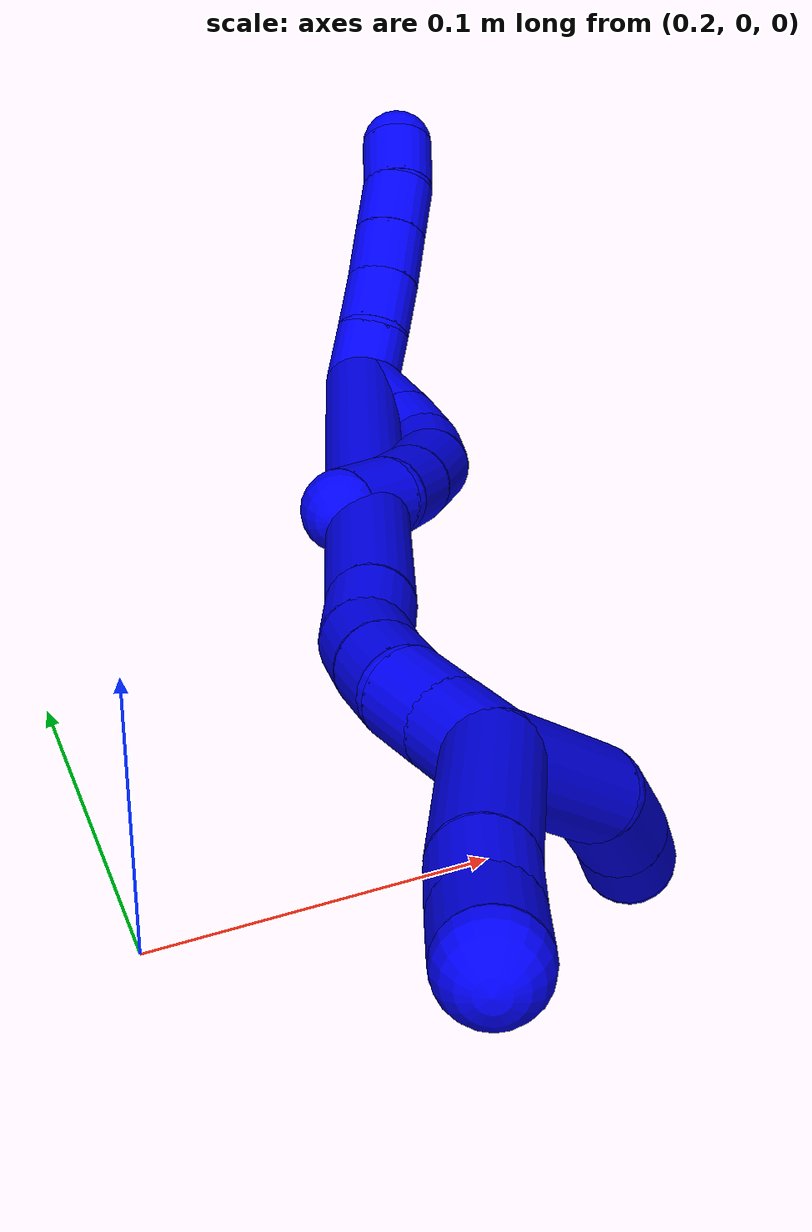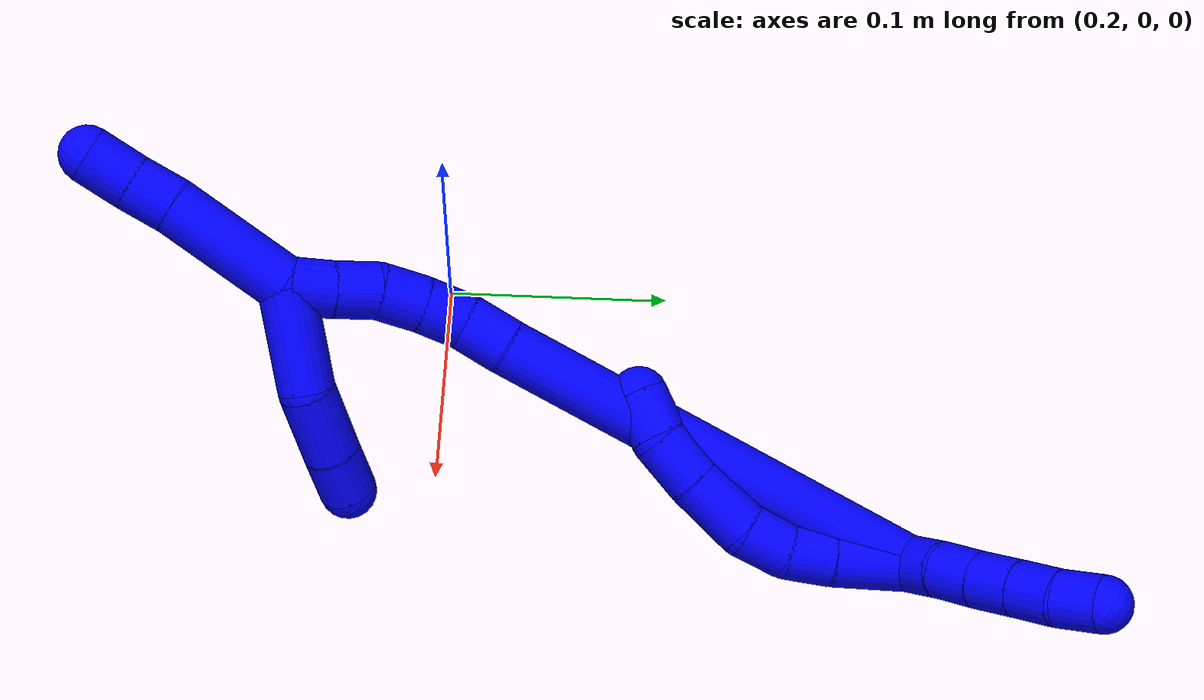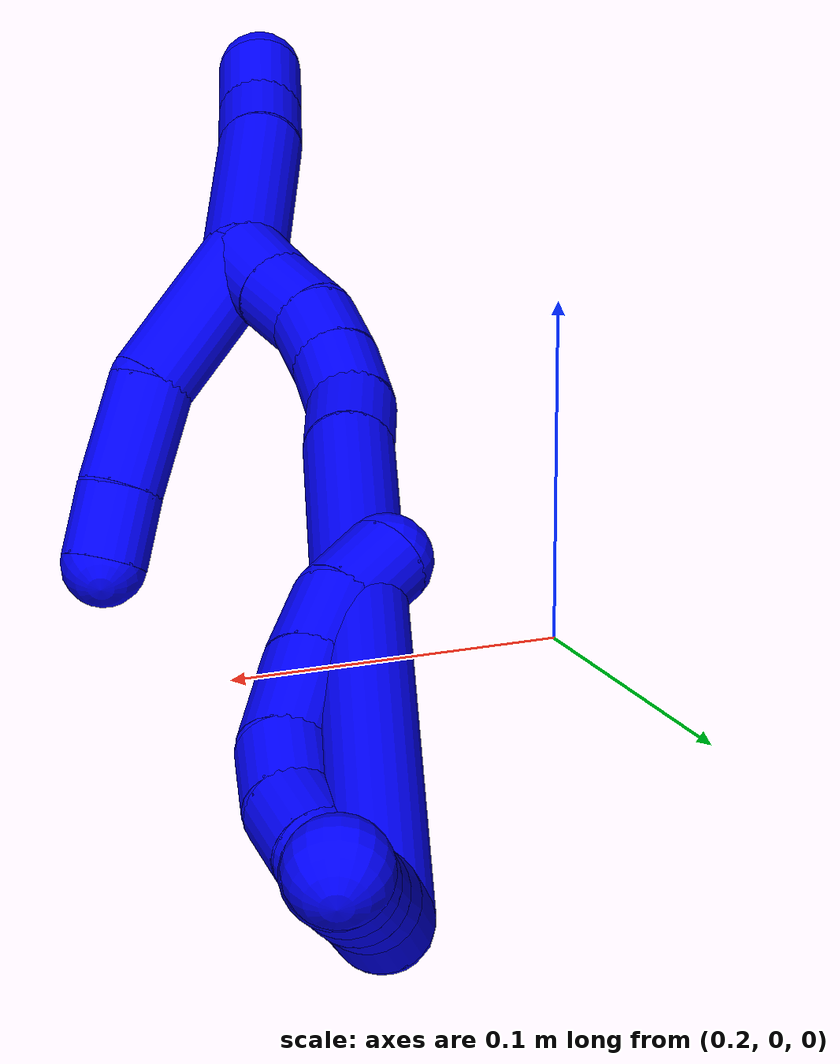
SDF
<sdf version="1.7">
 <world name="default">
  <model name="1">
   <static>0</static>
   <link name="1">
    <collision name="collision-cylinder-e_1_2_8">
     <pose>-0.006283 -0.005144 -0.014995 2.81111 -0.377342 -1.70578</pose>
     <geometry><cylinder><radius>0.0125</radius><length>0.034106</length></cylinder></geometry>
     <surface>
      <friction><ode><mu>1.16</mu><mu2>1.16</mu2><slip1>0</slip1><slip2>0</slip2></ode></friction>
      <contact><ode><kp>1e+06</kp><kd>1</kd><max_vel>0</max_vel><min_depth>0.001</min_depth></ode></contact>
     </surface>
    </collision>
    <visual name="visual-cylinder-e_1_2_8">
     <pose>-0.006283 -0.005144 -0.014995 2.81111 -0.377342 -1.70578</pose>
     <geometry><cylinder><radius>0.0125</radius><length>0.034106</length></cylinder></geometry>
     <material><ambient>0 0 1 1</ambient></material>
    </visual>
    <collision name="collision-cylinder-e_2_8_9">
     <pose>-0.01552 -0.012797 -0.039312 2.87872 -0.296902 -1.69381</pose>
     <geometry><cylinder><radius>0.0125</radius><length>0.02019</length></cylinder></geometry>
     <surface>
      <friction><ode><mu>1.16</mu><mu2>1.16</mu2><slip1>0</slip1><slip2>0</slip2></ode></friction>
      <contact><ode><kp>1e+06</kp><kd>1</kd><max_vel>0</max_vel><min_depth>0.001</min_depth></ode></contact>
     </surface>
    </collision>
    <visual name="visual-cylinder-e_2_8_9">
     <pose>-0.01552 -0.012797 -0.039312 2.87872 -0.296902 -1.69381</pose>
     <geometry><cylinder><radius>0.0125</radius><length>0.02019</length></cylinder></geometry>
     <material><ambient>0 0 1 1</ambient></material>
    </visual>
    <collision name="collision-cylinder-e_3_9_10">
     <pose>-0.019717 -0.015481 -0.059006 3.12472 -0.119318 -2.86099</pose>
     <geometry><cylinder><radius>0.0125</radius><length>0.020896</length></cylinder></geometry>
     <surface>
      <friction><ode><mu>1.16</mu><mu2>1.16</mu2><slip1>0</slip1><slip2>0</slip2></ode></friction>
      <contact><ode><kp>1e+06</kp><kd>1</kd><max_vel>0</max_vel><min_depth>0.001</min_depth></ode></contact>
     </surface>
    </collision>
    <visual name="visual-cylinder-e_3_9_10">
     <pose>-0.019717 -0.015481 -0.059006 3.12472 -0.119318 -2.86099</pose>
     <geometry><cylinder><radius>0.0125</radius><length>0.020896</length></cylinder></geometry>
     <material><ambient>0 0 1 1</ambient></material>
    </visual>
    <collision name="collision-cylinder-e_4_10_11">
     <pose>-0.018969 -0.013213 -0.084077 -2.97693 0.132863 -1.35707</pose>
     <geometry><cylinder><radius>0.0125</radius><length>0.030064</length></cylinder></geometry>
     <surface>
      <friction><ode><mu>1.16</mu><mu2>1.16</mu2><slip1>0</slip1><slip2>0</slip2></ode></friction>
      <contact><ode><kp>1e+06</kp><kd>1</kd><max_vel>0</max_vel><min_depth>0.001</min_depth></ode></contact>
     </surface>
    </collision>
    <visual name="visual-cylinder-e_4_10_11">
     <pose>-0.018969 -0.013213 -0.084077 -2.97693 0.132863 -1.35707</pose>
     <geometry><cylinder><radius>0.0125</radius><length>0.030064</length></cylinder></geometry>
     <material><ambient>0 0 1 1</ambient></material>
    </visual>
    <collision name="collision-cylinder-e_5_11_12">
     <pose>-0.014465 -0.008196 -0.109998 -2.91606 0.21489 -1.52207</pose>
     <geometry><cylinder><radius>0.0125</radius><length>0.023571</length></cylinder></geometry>
     <surface>
      <friction><ode><mu>1.16</mu><mu2>1.16</mu2><slip1>0</slip1><slip2>0</slip2></ode></friction>
      <contact><ode><kp>1e+06</kp><kd>1</kd><max_vel>0</max_vel><min_depth>0.001</min_depth></ode></contact>
     </surface>
    </collision>
    <visual name="visual-cylinder-e_5_11_12">
     <pose>-0.014465 -0.008196 -0.109998 -2.91606 0.21489 -1.52207</pose>
     <geometry><cylinder><radius>0.0125</radius><length>0.023571</length></cylinder></geometry>
     <material><ambient>0 0 1 1</ambient></material>
    </visual>
    <collision name="collision-cylinder-e_6_12_6">
     <pose>-0.006541 -0.002758 -0.129858 -2.82151 0.536428 -2.07947</pose>
     <geometry><cylinder><radius>0.0125</radius><length>0.021172</length></cylinder></geometry>
     <surface>
      <friction><ode><mu>1.16</mu><mu2>1.16</mu2><slip1>0</slip1><slip2>0</slip2></ode></friction>
      <contact><ode><kp>1e+06</kp><kd>1</kd><max_vel>0</max_vel><min_depth>0.001</min_depth></ode></contact>
     </surface>
    </collision>
    <visual name="visual-cylinder-e_6_12_6">
     <pose>-0.006541 -0.002758 -0.129858 -2.82151 0.536428 -2.07947</pose>
     <geometry><cylinder><radius>0.0125</radius><length>0.021172</length></cylinder></geometry>
     <material><ambient>0 0 1 1</ambient></material>
    </visual>
    <collision name="collision-cylinder-e_1_2_13">
     <pose>-0.004462 0.007036 0.00553 -0.904624 -0.46253 0.227851</pose>
     <geometry><cylinder><radius>0.0125</radius><length>0.02</length></cylinder></geometry>
     <surface>
      <friction><ode><mu>1.16</mu><mu2>1.16</mu2><slip1>0</slip1><slip2>0</slip2></ode></friction>
      <contact><ode><kp>1e+06</kp><kd>1</kd><max_vel>0</max_vel><min_depth>0.001</min_depth></ode></contact>
     </surface>
    </collision>
    <visual name="visual-cylinder-e_1_2_13">
     <pose>-0.004462 0.007036 0.00553 -0.904624 -0.46253 0.227851</pose>
     <geometry><cylinder><radius>0.0125</radius><length>0.02</length></cylinder></geometry>
     <material><ambient>0 0 1 1</ambient></material>
    </visual>
    <collision name="collision-cylinder-e_2_13_14">
     <pose>-0.012745 0.020318 0.017872 -0.742164 -0.39203 0.15422</pose>
     <geometry><cylinder><radius>0.0125</radius><length>0.02</length></cylinder></geometry>
     <surface>
      <friction><ode><mu>1.16</mu><mu2>1.16</mu2><slip1>0</slip1><slip2>0</slip2></ode></friction>
      <contact><ode><kp>1e+06</kp><kd>1</kd><max_vel>0</max_vel><min_depth>0.001</min_depth></ode></contact>
     </surface>
    </collision>
    <visual name="visual-cylinder-e_2_13_14">
     <pose>-0.012745 0.020318 0.017872 -0.742164 -0.39203 0.15422</pose>
     <geometry><cylinder><radius>0.0125</radius><length>0.02</length></cylinder></geometry>
     <material><ambient>0 0 1 1</ambient></material>
    </visual>
    <collision name="collision-cylinder-e_3_14_15">
     <pose>-0.02013 0.033041 0.031416 -0.766006 -0.364484 0.148226</pose>
     <geometry><cylinder><radius>0.0125</radius><length>0.02</length></cylinder></geometry>
     <surface>
      <friction><ode><mu>1.16</mu><mu2>1.16</mu2><slip1>0</slip1><slip2>0</slip2></ode></friction>
      <contact><ode><kp>1e+06</kp><kd>1</kd><max_vel>0</max_vel><min_depth>0.001</min_depth></ode></contact>
     </surface>
    </collision>
    <visual name="visual-cylinder-e_3_14_15">
     <pose>-0.02013 0.033041 0.031416 -0.766006 -0.364484 0.148226</pose>
     <geometry><cylinder><radius>0.0125</radius><length>0.02</length></cylinder></geometry>
     <material><ambient>0 0 1 1</ambient></material>
    </visual>
    <collision name="collision-cylinder-e_4_15_16">
     <pose>-0.027269 0.045892 0.044977 -0.751055 -0.365477 0.145453</pose>
     <geometry><cylinder><radius>0.0125</radius><length>0.02</length></cylinder></geometry>
     <surface>
      <friction><ode><mu>1.16</mu><mu2>1.16</mu2><slip1>0</slip1><slip2>0</slip2></ode></friction>
      <contact><ode><kp>1e+06</kp><kd>1</kd><max_vel>0</max_vel><min_depth>0.001</min_depth></ode></contact>
     </surface>
    </collision>
    <visual name="visual-cylinder-e_4_15_16">
     <pose>-0.027269 0.045892 0.044977 -0.751055 -0.365477 0.145453</pose>
     <geometry><cylinder><radius>0.0125</radius><length>0.02</length></cylinder></geometry>
     <material><ambient>0 0 1 1</ambient></material>
    </visual>
    <collision name="collision-cylinder-e_5_16_5">
     <pose>-0.032854 0.058791 0.059109 -0.729091 -0.202492 0.077497</pose>
     <geometry><cylinder><radius>0.0125</radius><length>0.02</length></cylinder></geometry>
     <surface>
      <friction><ode><mu>1.16</mu><mu2>1.16</mu2><slip1>0</slip1><slip2>0</slip2></ode></friction>
      <contact><ode><kp>1e+06</kp><kd>1</kd><max_vel>0</max_vel><min_depth>0.001</min_depth></ode></contact>
     </surface>
    </collision>
    <visual name="visual-cylinder-e_5_16_5">
     <pose>-0.032854 0.058791 0.059109 -0.729091 -0.202492 0.077497</pose>
     <geometry><cylinder><radius>0.0125</radius><length>0.02</length></cylinder></geometry>
     <material><ambient>0 0 1 1</ambient></material>
    </visual>
    <collision name="collision-cylinder-e_1_2_17">
     <pose>-0.00434 -0.005295 -0.098753 3.08803 -0.04386 -1.37211</pose>
     <geometry><cylinder><radius>0.0125</radius><length>0.19798</length></cylinder></geometry>
     <surface>
      <friction><ode><mu>1.16</mu><mu2>1.16</mu2><slip1>0</slip1><slip2>0</slip2></ode></friction>
      <contact><ode><kp>1e+06</kp><kd>1</kd><max_vel>0</max_vel><min_depth>0.001</min_depth></ode></contact>
     </surface>
    </collision>
    <visual name="visual-cylinder-e_1_2_17">
     <pose>-0.00434 -0.005295 -0.098753 3.08803 -0.04386 -1.37211</pose>
     <geometry><cylinder><radius>0.0125</radius><length>0.19798</length></cylinder></geometry>
     <material><ambient>0 0 1 1</ambient></material>
    </visual>
    <collision name="collision-cylinder-e_2_17_18">
     <pose>-0.008234 -0.01128 -0.208301 3.07778 0.041303 1.14875</pose>
     <geometry><cylinder><radius>0.0125</radius><length>0.021651</length></cylinder></geometry>
     <surface>
      <friction><ode><mu>1.16</mu><mu2>1.16</mu2><slip1>0</slip1><slip2>0</slip2></ode></friction>
      <contact><ode><kp>1e+06</kp><kd>1</kd><max_vel>0</max_vel><min_depth>0.001</min_depth></ode></contact>
     </surface>
    </collision>
    <visual name="visual-cylinder-e_2_17_18">
     <pose>-0.008234 -0.01128 -0.208301 3.07778 0.041303 1.14875</pose>
     <geometry><cylinder><radius>0.0125</radius><length>0.021651</length></cylinder></geometry>
     <material><ambient>0 0 1 1</ambient></material>
    </visual>
    <collision name="collision-cylinder-e_3_18_19">
     <pose>-0.010222 -0.012237 -0.228911 3.11433 -0.243117 -2.91935</pose>
     <geometry><cylinder><radius>0.0125</radius><length>0.020235</length></cylinder></geometry>
     <surface>
      <friction><ode><mu>1.16</mu><mu2>1.16</mu2><slip1>0</slip1><slip2>0</slip2></ode></friction>
      <contact><ode><kp>1e+06</kp><kd>1</kd><max_vel>0</max_vel><min_depth>0.001</min_depth></ode></contact>
     </surface>
    </collision>
    <visual name="visual-cylinder-e_3_18_19">
     <pose>-0.010222 -0.012237 -0.228911 3.11433 -0.243117 -2.91935</pose>
     <geometry><cylinder><radius>0.0125</radius><length>0.020235</length></cylinder></geometry>
     <material><ambient>0 0 1 1</ambient></material>
    </visual>
    <collision name="collision-cylinder-e_4_19_20">
     <pose>-0.015912 -0.013181 -0.248181 3.07017 -0.330762 -2.71985</pose>
     <geometry><cylinder><radius>0.0125</radius><length>0.020042</length></cylinder></geometry>
     <surface>
      <friction><ode><mu>1.16</mu><mu2>1.16</mu2><slip1>0</slip1><slip2>0</slip2></ode></friction>
      <contact><ode><kp>1e+06</kp><kd>1</kd><max_vel>0</max_vel><min_depth>0.001</min_depth></ode></contact>
     </surface>
    </collision>
    <visual name="visual-cylinder-e_4_19_20">
     <pose>-0.015912 -0.013181 -0.248181 3.07017 -0.330762 -2.71985</pose>
     <geometry><cylinder><radius>0.0125</radius><length>0.020042</length></cylinder></geometry>
     <material><ambient>0 0 1 1</ambient></material>
    </visual>
    <collision name="collision-cylinder-e_5_20_21">
     <pose>-0.024106 -0.016286 -0.266023 2.85979 -0.514792 -2.15311</pose>
     <geometry><cylinder><radius>0.0125</radius><length>0.020065</length></cylinder></geometry>
     <surface>
      <friction><ode><mu>1.16</mu><mu2>1.16</mu2><slip1>0</slip1><slip2>0</slip2></ode></friction>
      <contact><ode><kp>1e+06</kp><kd>1</kd><max_vel>0</max_vel><min_depth>0.001</min_depth></ode></contact>
     </surface>
    </collision>
    <visual name="visual-cylinder-e_5_20_21">
     <pose>-0.024106 -0.016286 -0.266023 2.85979 -0.514792 -2.15311</pose>
     <geometry><cylinder><radius>0.0125</radius><length>0.020065</length></cylinder></geometry>
     <material><ambient>0 0 1 1</ambient></material>
    </visual>
    <collision name="collision-cylinder-e_6_21_1">
     <pose>-0.033758 -0.020583 -0.283046 2.92845 -0.490003 -2.33299</pose>
     <geometry><cylinder><radius>0.0125</radius><length>0.020026</length></cylinder></geometry>
     <surface>
      <friction><ode><mu>1.16</mu><mu2>1.16</mu2><slip1>0</slip1><slip2>0</slip2></ode></friction>
      <contact><ode><kp>1e+06</kp><kd>1</kd><max_vel>0</max_vel><min_depth>0.001</min_depth></ode></contact>
     </surface>
    </collision>
    <visual name="visual-cylinder-e_6_21_1">
     <pose>-0.033758 -0.020583 -0.283046 2.92845 -0.490003 -2.33299</pose>
     <geometry><cylinder><radius>0.0125</radius><length>0.020026</length></cylinder></geometry>
     <material><ambient>0 0 1 1</ambient></material>
    </visual>
    <collision name="collision-cylinder-e_1_1_22">
     <pose>-0.037646 -0.021157 -0.320628 -3.09687 0.028466 -1.13368</pose>
     <geometry><cylinder><radius>0.0125</radius><length>0.057976</length></cylinder></geometry>
     <surface>
      <friction><ode><mu>1.16</mu><mu2>1.16</mu2><slip1>0</slip1><slip2>0</slip2></ode></friction>
      <contact><ode><kp>1e+06</kp><kd>1</kd><max_vel>0</max_vel><min_depth>0.001</min_depth></ode></contact>
     </surface>
    </collision>
    <visual name="visual-cylinder-e_1_1_22">
     <pose>-0.037646 -0.021157 -0.320628 -3.09687 0.028466 -1.13368</pose>
     <geometry><cylinder><radius>0.0125</radius><length>0.057976</length></cylinder></geometry>
     <material><ambient>0 0 1 1</ambient></material>
    </visual>
    <collision name="collision-cylinder-e_2_22_23">
     <pose>-0.037062 -0.020297 -0.35961 3.09824 -0.024026 -1.01197</pose>
     <geometry><cylinder><radius>0.0125</radius><length>0.020095</length></cylinder></geometry>
     <surface>
      <friction><ode><mu>1.16</mu><mu2>1.16</mu2><slip1>0</slip1><slip2>0</slip2></ode></friction>
      <contact><ode><kp>1e+06</kp><kd>1</kd><max_vel>0</max_vel><min_depth>0.001</min_depth></ode></contact>
     </surface>
    </collision>
    <visual name="visual-cylinder-e_2_22_23">
     <pose>-0.037062 -0.020297 -0.35961 3.09824 -0.024026 -1.01197</pose>
     <geometry><cylinder><radius>0.0125</radius><length>0.020095</length></cylinder></geometry>
     <material><ambient>0 0 1 1</ambient></material>
    </visual>
    <collision name="collision-cylinder-e_3_23_4">
     <pose>-0.03807 -0.020026 -0.38056 -3.07703 -0.069952 1.65087</pose>
     <geometry><cylinder><radius>0.0125</radius><length>0.021929</length></cylinder></geometry>
     <surface>
      <friction><ode><mu>1.16</mu><mu2>1.16</mu2><slip1>0</slip1><slip2>0</slip2></ode></friction>
      <contact><ode><kp>1e+06</kp><kd>1</kd><max_vel>0</max_vel><min_depth>0.001</min_depth></ode></contact>
     </surface>
    </collision>
    <visual name="visual-cylinder-e_3_23_4">
     <pose>-0.03807 -0.020026 -0.38056 -3.07703 -0.069952 1.65087</pose>
     <geometry><cylinder><radius>0.0125</radius><length>0.021929</length></cylinder></geometry>
     <material><ambient>0 0 1 1</ambient></material>
    </visual>
    <collision name="collision-cylinder-e_1_1_24">
     <pose>-0.046321 -0.037612 -0.276085 0.771224 -0.346391 -0.141797</pose>
     <geometry><cylinder><radius>0.0125</radius><length>0.046246</length></cylinder></geometry>
     <surface>
      <friction><ode><mu>1.16</mu><mu2>1.16</mu2><slip1>0</slip1><slip2>0</slip2></ode></friction>
      <contact><ode><kp>1e+06</kp><kd>1</kd><max_vel>0</max_vel><min_depth>0.001</min_depth></ode></contact>
     </surface>
    </collision>
    <visual name="visual-cylinder-e_1_1_24">
     <pose>-0.046321 -0.037612 -0.276085 0.771224 -0.346391 -0.141797</pose>
     <geometry><cylinder><radius>0.0125</radius><length>0.046246</length></cylinder></geometry>
     <material><ambient>0 0 1 1</ambient></material>
    </visual>
    <collision name="collision-cylinder-e_2_24_25">
     <pose>-0.054168 -0.064016 -0.248947 0.772356 0.00022 9e-05</pose>
     <geometry><cylinder><radius>0.0125</radius><length>0.032229</length></cylinder></geometry>
     <surface>
      <friction><ode><mu>1.16</mu><mu2>1.16</mu2><slip1>0</slip1><slip2>0</slip2></ode></friction>
      <contact><ode><kp>1e+06</kp><kd>1</kd><max_vel>0</max_vel><min_depth>0.001</min_depth></ode></contact>
     </surface>
    </collision>
    <visual name="visual-cylinder-e_2_24_25">
     <pose>-0.054168 -0.064016 -0.248947 0.772356 0.00022 9e-05</pose>
     <geometry><cylinder><radius>0.0125</radius><length>0.032229</length></cylinder></geometry>
     <material><ambient>0 0 1 1</ambient></material>
    </visual>
    <collision name="collision-cylinder-e_3_25_3">
     <pose>-0.053358 -0.082958 -0.229925 0.799686 0.075044 0.031726</pose>
     <geometry><cylinder><radius>0.0125</radius><length>0.021525</length></cylinder></geometry>
     <surface>
      <friction><ode><mu>1.16</mu><mu2>1.16</mu2><slip1>0</slip1><slip2>0</slip2></ode></friction>
      <contact><ode><kp>1e+06</kp><kd>1</kd><max_vel>0</max_vel><min_depth>0.001</min_depth></ode></contact>
     </surface>
    </collision>
    <visual name="visual-cylinder-e_3_25_3">
     <pose>-0.053358 -0.082958 -0.229925 0.799686 0.075044 0.031726</pose>
     <geometry><cylinder><radius>0.0125</radius><length>0.021525</length></cylinder></geometry>
     <material><ambient>0 0 1 1</ambient></material>
    </visual>
    <collision name="collision-sphere-3">
     <pose>-0.052551 -0.090655 -0.222445 0 -0 0</pose>
     <geometry><sphere><radius>0.0125</radius></sphere></geometry>
     <surface>
      <friction><ode><mu>1.16</mu><mu2>1.16</mu2><slip1>0</slip1><slip2>0</slip2></ode></friction>
      <contact><ode><kp>1e+06</kp><kd>1</kd><max_vel>0</max_vel><min_depth>0.001</min_depth></ode></contact>
     </surface>
    </collision>
    <visual name="visual-sphere-3">
     <pose>-0.052551 -0.090655 -0.222445 0 -0 0</pose>
     <geometry><sphere><radius>0.0125</radius></sphere></geometry>
     <material><ambient>0 0 1 1</ambient></material>
    </visual>
    <collision name="collision-sphere-25">
     <pose>-0.054164 -0.075262 -0.237405 0 -0 0</pose>
     <geometry><sphere><radius>0.0125</radius></sphere></geometry>
     <surface>
      <friction><ode><mu>1.16</mu><mu2>1.16</mu2><slip1>0</slip1><slip2>0</slip2></ode></friction>
      <contact><ode><kp>1e+06</kp><kd>1</kd><max_vel>0</max_vel><min_depth>0.001</min_depth></ode></contact>
     </surface>
    </collision>
    <visual name="visual-sphere-25">
     <pose>-0.054164 -0.075262 -0.237405 0 -0 0</pose>
     <geometry><sphere><radius>0.0125</radius></sphere></geometry>
     <material><ambient>0 0 1 1</ambient></material>
    </visual>
    <collision name="collision-sphere-24">
     <pose>-0.054172 -0.052771 -0.260489 0 -0 0</pose>
     <geometry><sphere><radius>0.0125</radius></sphere></geometry>
     <surface>
      <friction><ode><mu>1.16</mu><mu2>1.16</mu2><slip1>0</slip1><slip2>0</slip2></ode></friction>
      <contact><ode><kp>1e+06</kp><kd>1</kd><max_vel>0</max_vel><min_depth>0.001</min_depth></ode></contact>
     </surface>
    </collision>
    <visual name="visual-sphere-24">
     <pose>-0.054172 -0.052771 -0.260489 0 -0 0</pose>
     <geometry><sphere><radius>0.0125</radius></sphere></geometry>
     <material><ambient>0 0 1 1</ambient></material>
    </visual>
    <collision name="collision-sphere-4">
     <pose>-0.038836 -0.019321 -0.391475 0 -0 0</pose>
     <geometry><sphere><radius>0.0125</radius></sphere></geometry>
     <surface>
      <friction><ode><mu>1.16</mu><mu2>1.16</mu2><slip1>0</slip1><slip2>0</slip2></ode></friction>
      <contact><ode><kp>1e+06</kp><kd>1</kd><max_vel>0</max_vel><min_depth>0.001</min_depth></ode></contact>
     </surface>
    </collision>
    <visual name="visual-sphere-4">
     <pose>-0.038836 -0.019321 -0.391475 0 -0 0</pose>
     <geometry><sphere><radius>0.0125</radius></sphere></geometry>
     <material><ambient>0 0 1 1</ambient></material>
    </visual>
    <collision name="collision-sphere-23">
     <pose>-0.037304 -0.020732 -0.369645 0 -0 0</pose>
     <geometry><sphere><radius>0.0125</radius></sphere></geometry>
     <surface>
      <friction><ode><mu>1.16</mu><mu2>1.16</mu2><slip1>0</slip1><slip2>0</slip2></ode></friction>
      <contact><ode><kp>1e+06</kp><kd>1</kd><max_vel>0</max_vel><min_depth>0.001</min_depth></ode></contact>
     </surface>
    </collision>
    <visual name="visual-sphere-23">
     <pose>-0.037304 -0.020732 -0.369645 0 -0 0</pose>
     <geometry><sphere><radius>0.0125</radius></sphere></geometry>
     <material><ambient>0 0 1 1</ambient></material>
    </visual>
    <collision name="collision-sphere-22">
     <pose>-0.036821 -0.019861 -0.349575 0 -0 0</pose>
     <geometry><sphere><radius>0.0125</radius></sphere></geometry>
     <surface>
      <friction><ode><mu>1.16</mu><mu2>1.16</mu2><slip1>0</slip1><slip2>0</slip2></ode></friction>
      <contact><ode><kp>1e+06</kp><kd>1</kd><max_vel>0</max_vel><min_depth>0.001</min_depth></ode></contact>
     </surface>
    </collision>
    <visual name="visual-sphere-22">
     <pose>-0.036821 -0.019861 -0.349575 0 -0 0</pose>
     <geometry><sphere><radius>0.0125</radius></sphere></geometry>
     <material><ambient>0 0 1 1</ambient></material>
    </visual>
    <collision name="collision-sphere-1">
     <pose>-0.038471 -0.022452 -0.291681 0 -0 0</pose>
     <geometry><sphere><radius>0.0125</radius></sphere></geometry>
     <surface>
      <friction><ode><mu>1.16</mu><mu2>1.16</mu2><slip1>0</slip1><slip2>0</slip2></ode></friction>
      <contact><ode><kp>1e+06</kp><kd>1</kd><max_vel>0</max_vel><min_depth>0.001</min_depth></ode></contact>
     </surface>
    </collision>
    <visual name="visual-sphere-1">
     <pose>-0.038471 -0.022452 -0.291681 0 -0 0</pose>
     <geometry><sphere><radius>0.0125</radius></sphere></geometry>
     <material><ambient>0 0 1 1</ambient></material>
    </visual>
    <collision name="collision-sphere-21">
     <pose>-0.029046 -0.018714 -0.274411 0 -0 0</pose>
     <geometry><sphere><radius>0.0125</radius></sphere></geometry>
     <surface>
      <friction><ode><mu>1.16</mu><mu2>1.16</mu2><slip1>0</slip1><slip2>0</slip2></ode></friction>
      <contact><ode><kp>1e+06</kp><kd>1</kd><max_vel>0</max_vel><min_depth>0.001</min_depth></ode></contact>
     </surface>
    </collision>
    <visual name="visual-sphere-21">
     <pose>-0.029046 -0.018714 -0.274411 0 -0 0</pose>
     <geometry><sphere><radius>0.0125</radius></sphere></geometry>
     <material><ambient>0 0 1 1</ambient></material>
    </visual>
    <collision name="collision-sphere-12">
     <pose>-0.011951 -0.005621 -0.121221 0 -0 0</pose>
     <geometry><sphere><radius>0.0125</radius></sphere></geometry>
     <surface>
      <friction><ode><mu>1.16</mu><mu2>1.16</mu2><slip1>0</slip1><slip2>0</slip2></ode></friction>
      <contact><ode><kp>1e+06</kp><kd>1</kd><max_vel>0</max_vel><min_depth>0.001</min_depth></ode></contact>
     </surface>
    </collision>
    <visual name="visual-sphere-12">
     <pose>-0.011951 -0.005621 -0.121221 0 -0 0</pose>
     <geometry><sphere><radius>0.0125</radius></sphere></geometry>
     <material><ambient>0 0 1 1</ambient></material>
    </visual>
    <collision name="collision-sphere-11">
     <pose>-0.016978 -0.010771 -0.098775 0 -0 0</pose>
     <geometry><sphere><radius>0.0125</radius></sphere></geometry>
     <surface>
      <friction><ode><mu>1.16</mu><mu2>1.16</mu2><slip1>0</slip1><slip2>0</slip2></ode></friction>
      <contact><ode><kp>1e+06</kp><kd>1</kd><max_vel>0</max_vel><min_depth>0.001</min_depth></ode></contact>
     </surface>
    </collision>
    <visual name="visual-sphere-11">
     <pose>-0.016978 -0.010771 -0.098775 0 -0 0</pose>
     <geometry><sphere><radius>0.0125</radius></sphere></geometry>
     <material><ambient>0 0 1 1</ambient></material>
    </visual>
    <collision name="collision-sphere-10">
     <pose>-0.02096 -0.015656 -0.069379 0 -0 0</pose>
     <geometry><sphere><radius>0.0125</radius></sphere></geometry>
     <surface>
      <friction><ode><mu>1.16</mu><mu2>1.16</mu2><slip1>0</slip1><slip2>0</slip2></ode></friction>
      <contact><ode><kp>1e+06</kp><kd>1</kd><max_vel>0</max_vel><min_depth>0.001</min_depth></ode></contact>
     </surface>
    </collision>
    <visual name="visual-sphere-10">
     <pose>-0.02096 -0.015656 -0.069379 0 -0 0</pose>
     <geometry><sphere><radius>0.0125</radius></sphere></geometry>
     <material><ambient>0 0 1 1</ambient></material>
    </visual>
    <collision name="collision-sphere-9">
     <pose>-0.018473 -0.015306 -0.048634 0 -0 0</pose>
     <geometry><sphere><radius>0.0125</radius></sphere></geometry>
     <surface>
      <friction><ode><mu>1.16</mu><mu2>1.16</mu2><slip1>0</slip1><slip2>0</slip2></ode></friction>
      <contact><ode><kp>1e+06</kp><kd>1</kd><max_vel>0</max_vel><min_depth>0.001</min_depth></ode></contact>
     </surface>
    </collision>
    <visual name="visual-sphere-9">
     <pose>-0.018473 -0.015306 -0.048634 0 -0 0</pose>
     <geometry><sphere><radius>0.0125</radius></sphere></geometry>
     <material><ambient>0 0 1 1</ambient></material>
    </visual>
    <collision name="collision-sphere-2">
     <geometry><sphere><radius>0.0125</radius></sphere></geometry>
     <surface>
      <friction><ode><mu>1.16</mu><mu2>1.16</mu2><slip1>0</slip1><slip2>0</slip2></ode></friction>
      <contact><ode><kp>1e+06</kp><kd>1</kd><max_vel>0</max_vel><min_depth>0.001</min_depth></ode></contact>
     </surface>
    </collision>
    <visual name="visual-sphere-2">
     <geometry><sphere><radius>0.0125</radius></sphere></geometry>
     <material><ambient>0 0 1 1</ambient></material>
    </visual>
    <collision name="collision-sphere-19">
     <pose>-0.012658 -0.012505 -0.238727 0 -0 0</pose>
     <geometry><sphere><radius>0.0125</radius></sphere></geometry>
     <surface>
      <friction><ode><mu>1.16</mu><mu2>1.16</mu2><slip1>0</slip1><slip2>0</slip2></ode></friction>
      <contact><ode><kp>1e+06</kp><kd>1</kd><max_vel>0</max_vel><min_depth>0.001</min_depth></ode></contact>
     </surface>
    </collision>
    <visual name="visual-sphere-19">
     <pose>-0.012658 -0.012505 -0.238727 0 -0 0</pose>
     <geometry><sphere><radius>0.0125</radius></sphere></geometry>
     <material><ambient>0 0 1 1</ambient></material>
    </visual>
    <collision name="collision-sphere-8">
     <pose>-0.012566 -0.010289 -0.02999 0 -0 0</pose>
     <geometry><sphere><radius>0.0125</radius></sphere></geometry>
     <surface>
      <friction><ode><mu>1.16</mu><mu2>1.16</mu2><slip1>0</slip1><slip2>0</slip2></ode></friction>
      <contact><ode><kp>1e+06</kp><kd>1</kd><max_vel>0</max_vel><min_depth>0.001</min_depth></ode></contact>
     </surface>
    </collision>
    <visual name="visual-sphere-8">
     <pose>-0.012566 -0.010289 -0.02999 0 -0 0</pose>
     <geometry><sphere><radius>0.0125</radius></sphere></geometry>
     <material><ambient>0 0 1 1</ambient></material>
    </visual>
    <collision name="collision-sphere-6">
     <pose>-0.001131 0.000105 -0.138495 0 -0 0</pose>
     <geometry><sphere><radius>0.0125</radius></sphere></geometry>
     <surface>
      <friction><ode><mu>1.16</mu><mu2>1.16</mu2><slip1>0</slip1><slip2>0</slip2></ode></friction>
      <contact><ode><kp>1e+06</kp><kd>1</kd><max_vel>0</max_vel><min_depth>0.001</min_depth></ode></contact>
     </surface>
    </collision>
    <visual name="visual-sphere-6">
     <pose>-0.001131 0.000105 -0.138495 0 -0 0</pose>
     <geometry><sphere><radius>0.0125</radius></sphere></geometry>
     <material><ambient>0 0 1 1</ambient></material>
    </visual>
    <collision name="collision-sphere-13">
     <pose>-0.008924 0.014072 0.011061 0 -0 0</pose>
     <geometry><sphere><radius>0.0125</radius></sphere></geometry>
     <surface>
      <friction><ode><mu>1.16</mu><mu2>1.16</mu2><slip1>0</slip1><slip2>0</slip2></ode></friction>
      <contact><ode><kp>1e+06</kp><kd>1</kd><max_vel>0</max_vel><min_depth>0.001</min_depth></ode></contact>
     </surface>
    </collision>
    <visual name="visual-sphere-13">
     <pose>-0.008924 0.014072 0.011061 0 -0 0</pose>
     <geometry><sphere><radius>0.0125</radius></sphere></geometry>
     <material><ambient>0 0 1 1</ambient></material>
    </visual>
    <collision name="collision-sphere-14">
     <pose>-0.016566 0.026564 0.024683 0 -0 0</pose>
     <geometry><sphere><radius>0.0125</radius></sphere></geometry>
     <surface>
      <friction><ode><mu>1.16</mu><mu2>1.16</mu2><slip1>0</slip1><slip2>0</slip2></ode></friction>
      <contact><ode><kp>1e+06</kp><kd>1</kd><max_vel>0</max_vel><min_depth>0.001</min_depth></ode></contact>
     </surface>
    </collision>
    <visual name="visual-sphere-14">
     <pose>-0.016566 0.026564 0.024683 0 -0 0</pose>
     <geometry><sphere><radius>0.0125</radius></sphere></geometry>
     <material><ambient>0 0 1 1</ambient></material>
    </visual>
    <collision name="collision-sphere-15">
     <pose>-0.023695 0.039518 0.03815 0 -0 0</pose>
     <geometry><sphere><radius>0.0125</radius></sphere></geometry>
     <surface>
      <friction><ode><mu>1.16</mu><mu2>1.16</mu2><slip1>0</slip1><slip2>0</slip2></ode></friction>
      <contact><ode><kp>1e+06</kp><kd>1</kd><max_vel>0</max_vel><min_depth>0.001</min_depth></ode></contact>
     </surface>
    </collision>
    <visual name="visual-sphere-15">
     <pose>-0.023695 0.039518 0.03815 0 -0 0</pose>
     <geometry><sphere><radius>0.0125</radius></sphere></geometry>
     <material><ambient>0 0 1 1</ambient></material>
    </visual>
    <collision name="collision-sphere-16">
     <pose>-0.030843 0.052265 0.051803 0 -0 0</pose>
     <geometry><sphere><radius>0.0125</radius></sphere></geometry>
     <surface>
      <friction><ode><mu>1.16</mu><mu2>1.16</mu2><slip1>0</slip1><slip2>0</slip2></ode></friction>
      <contact><ode><kp>1e+06</kp><kd>1</kd><max_vel>0</max_vel><min_depth>0.001</min_depth></ode></contact>
     </surface>
    </collision>
    <visual name="visual-sphere-16">
     <pose>-0.030843 0.052265 0.051803 0 -0 0</pose>
     <geometry><sphere><radius>0.0125</radius></sphere></geometry>
     <material><ambient>0 0 1 1</ambient></material>
    </visual>
    <collision name="collision-sphere-5">
     <pose>-0.034865 0.065317 0.066414 0 -0 0</pose>
     <geometry><sphere><radius>0.0125</radius></sphere></geometry>
     <surface>
      <friction><ode><mu>1.16</mu><mu2>1.16</mu2><slip1>0</slip1><slip2>0</slip2></ode></friction>
      <contact><ode><kp>1e+06</kp><kd>1</kd><max_vel>0</max_vel><min_depth>0.001</min_depth></ode></contact>
     </surface>
    </collision>
    <visual name="visual-sphere-5">
     <pose>-0.034865 0.065317 0.066414 0 -0 0</pose>
     <geometry><sphere><radius>0.0125</radius></sphere></geometry>
     <material><ambient>0 0 1 1</ambient></material>
    </visual>
    <collision name="collision-sphere-17">
     <pose>-0.008681 -0.01059 -0.197506 0 -0 0</pose>
     <geometry><sphere><radius>0.0125</radius></sphere></geometry>
     <surface>
      <friction><ode><mu>1.16</mu><mu2>1.16</mu2><slip1>0</slip1><slip2>0</slip2></ode></friction>
      <contact><ode><kp>1e+06</kp><kd>1</kd><max_vel>0</max_vel><min_depth>0.001</min_depth></ode></contact>
     </surface>
    </collision>
    <visual name="visual-sphere-17">
     <pose>-0.008681 -0.01059 -0.197506 0 -0 0</pose>
     <geometry><sphere><radius>0.0125</radius></sphere></geometry>
     <material><ambient>0 0 1 1</ambient></material>
    </visual>
    <collision name="collision-sphere-18">
     <pose>-0.007787 -0.011969 -0.219095 0 -0 0</pose>
     <geometry><sphere><radius>0.0125</radius></sphere></geometry>
     <surface>
      <friction><ode><mu>1.16</mu><mu2>1.16</mu2><slip1>0</slip1><slip2>0</slip2></ode></friction>
      <contact><ode><kp>1e+06</kp><kd>1</kd><max_vel>0</max_vel><min_depth>0.001</min_depth></ode></contact>
     </surface>
    </collision>
    <visual name="visual-sphere-18">
     <pose>-0.007787 -0.011969 -0.219095 0 -0 0</pose>
     <geometry><sphere><radius>0.0125</radius></sphere></geometry>
     <material><ambient>0 0 1 1</ambient></material>
    </visual>
    <collision name="collision-sphere-20">
     <pose>-0.019167 -0.013857 -0.257635 0 -0 0</pose>
     <geometry><sphere><radius>0.0125</radius></sphere></geometry>
     <surface>
      <friction><ode><mu>1.16</mu><mu2>1.16</mu2><slip1>0</slip1><slip2>0</slip2></ode></friction>
      <contact><ode><kp>1e+06</kp><kd>1</kd><max_vel>0</max_vel><min_depth>0.001</min_depth></ode></contact>
     </surface>
    </collision>
    <visual name="visual-sphere-20">
     <pose>-0.019167 -0.013857 -0.257635 0 -0 0</pose>
     <geometry><sphere><radius>0.0125</radius></sphere></geometry>
     <material><ambient>0 0 1 1</ambient></material>
    </visual>
    <inertial>
     <pose>-0.020614 -0.01108 -0.149072 0 -0 0</pose>
     <mass>0.75</mass>
     <inertia>
      <ixx>-0.000525</ixx>
      <ixy>0</ixy>
      <ixz>0</ixz>
      <iyy>-0.000785</iyy>
      <iyz>0</iyz>
      <izz>4.7e-05</izz>
     </inertia>
    </inertial>
   </link>
   <pose>0.341427 0.209729 0.011763 1.94531 0.356726 2.86741</pose>
  </model>
 </world>
</sdf>
